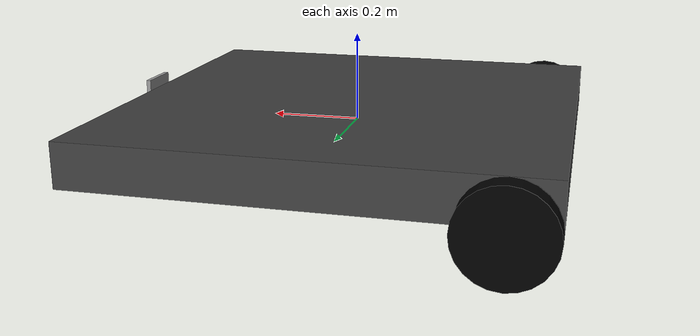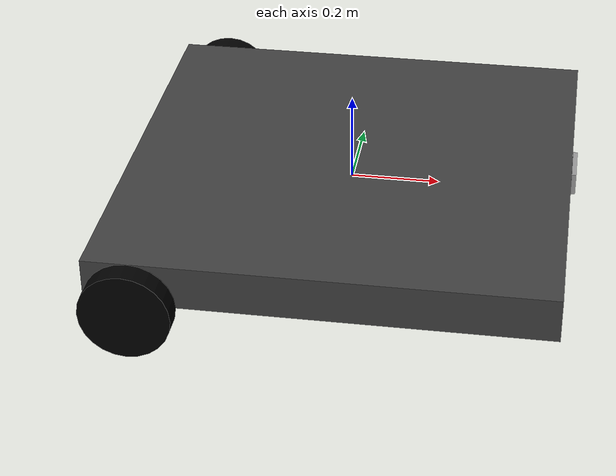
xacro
<?xml version="1.0"?>
<robot name="differential_drive_robot" xmlns:xacro="http://www.ros.org/wiki/xacro">

    <xacro:property name="PI" value="3.14159265"/>
    <xacro:property name="body_length" value="1.0"/>
    <xacro:property name="body_width" value="1.0"/>
    <xacro:property name="body_height" value="0.1"/>
    <xacro:property name="body_density" value="7850.0"/> <xacro:property name="body_mass" value="${body_density * body_length * body_height * body_width}"/>
    <xacro:property name="body_inertia_x" value="${1.0/12.0 * body_mass * (body_height*body_height + body_width*body_width)}"/>
    <xacro:property name="body_inertia_y" value="${1.0/12.0 * body_mass * (body_length*body_length + body_height*body_height)}"/>
    <xacro:property name="body_inertia_z" value="${1.0/12.0 * body_mass * (body_length*body_length + body_width*body_width)}"/>

    <xacro:property name="wheel_radius" value="0.1"/>
    <xacro:property name="wheel_width" value="0.05"/>
    <xacro:property name="wheel_separation" value="${body_width + wheel_width}"/>
    <xacro:property name="wheel_offset" value="${body_length/2 - wheel_radius}"/>
    <xacro:property name="wheel_density" value="900"/> <xacro:property name="wheel_mass" value="${wheel_density * PI * wheel_radius * wheel_radius * wheel_width}"/>
    <xacro:property name="wheel_inertia_x" value="${1.0/12.0 * wheel_mass * (3*wheel_radius*wheel_radius + wheel_width*wheel_width)}"/>
    <xacro:property name="wheel_inertia_y" value="${1.0/12.0 * wheel_mass * (3*wheel_radius*wheel_radius + wheel_width*wheel_width)}"/>
    <xacro:property name="wheel_inertia_z" value="${1.0/2.0 * wheel_mass * wheel_radius * wheel_radius}"/>

    <xacro:property name="caster_radius" value="0.1"/>
    <xacro:property name="caster_offset" value="${body_length/2 - caster_radius}"/>
    <xacro:property name="caster_density" value="0.1"/>
    <xacro:property name="caster_mass" value="${caster_density * 4.0/3.0 * PI * caster_radius * caster_radius * caster_radius}"/>
    <xacro:property name="caster_inertia_x" value="${2.0/5.0 * caster_mass * caster_radius * caster_radius}"/>
    <xacro:property name="caster_inertia_y" value="${2.0/5.0 * caster_mass * caster_radius * caster_radius}"/>
    <xacro:property name="caster_inertia_z" value="${2.0/5.0 * caster_mass * caster_radius * caster_radius}"/>

    <xacro:property name="max_linear_acceleration" value="10"/>

    <link name="body_link">
        <visual>
            <origin xyz="0.0 0.0 0.0" rpy="0.0 0.0 0.0"/>
            <geometry>
                <box size="${body_length} ${body_width} ${body_height}"/>
            </geometry>
            <material name="body_material">
                <color rgba="0.25 0.25 0.25 1.0"/>
            </material>
        </visual>
        <collision>
            <origin xyz="0.0 0.0 0.0" rpy="0.0 0.0 0.0"/>
            <geometry>
                <box size="${body_length} ${body_width} ${body_height}"/>
            </geometry>
        </collision>
        <inertial>
            <mass value="10"/>
            <inertia ixx="${body_inertia_x}" ixy="0.0" ixz="0.0" iyy="${body_inertia_y}" iyz="0" izz="${body_inertia_z}"/>
            <origin xyz="0 0 0" rpy="0 0 0"/>
        </inertial>
    </link>

    <link name="left_wheel_link">
        <visual>
            <origin xyz="0.0 0.0 0.0" rpy="1.570795 0.0 0.0"/>
            <geometry>
                <cylinder radius="${wheel_radius}" length="${wheel_width}"/>
            </geometry>
            <material name="wheel_material">
                <color rgba="0.0 0.0 0.0 1.0"/>
            </material>
        </visual>
        <collision>
            <origin xyz="0.0 0.0 0.0" rpy="1.570795 0.0 0.0"/>
            <geometry>
                <cylinder radius="${wheel_radius}" length="${wheel_width}"/>
            </geometry>
        </collision>
        <inertial>
            <mass value="2"/>
            <inertia ixx="${wheel_inertia_x}" ixy="0.0" ixz="0.0" iyy="${wheel_inertia_y}" iyz="0" izz="${wheel_inertia_z}"/>
            <origin xyz="0.0 0.0 0.0" rpy="1.570795 0.0 0.0"/>
        </inertial>
    </link>

    <link name="right_wheel_link">
        <visual>
            <origin xyz="0.0 0.0 0.0" rpy="1.570795 0.0 0.0"/>
            <geometry>
                <cylinder radius="${wheel_radius}" length="${wheel_width}"/>
            </geometry>
            <material name="wheel_material">
                <color rgba="0.0 0.0 0.0 1.0"/>
            </material>
        </visual>
        <collision>
            <origin xyz="0.0 0.0 0.0" rpy="1.570795 0.0 0.0"/>
            <geometry>
                <cylinder radius="${wheel_radius}" length="${wheel_width}"/>
            </geometry>
        </collision>
        <inertial>
            <mass value="2"/>
            <inertia ixx="${wheel_inertia_x}" ixy="0.0" ixz="0.0" iyy="${wheel_inertia_y}" iyz="0" izz="${wheel_inertia_z}"/>
            <origin xyz="0.0 0.0 0.0" rpy="1.570795 0.0 0.0"/>
        </inertial>
    </link>

    <link name="caster_link">
        <visual>
            <origin xyz="0.0 0.0 0.0" rpy="0.0 0.0 0.0"/>
            <geometry>
                <sphere radius="${caster_radius}"/>
            </geometry>
            <material name="caster_material">
                <color rgba="0.0 0.0 0.0 1.0"/>
            </material>
        </visual>
        <collision>
            <origin xyz="0.0 0.0 0.0" rpy="0.0 0.0 0.0"/>
            <geometry>
                <sphere radius="${caster_radius}"/>
            </geometry>
        </collision>
        <inertial>
            <mass value="0.5"/>
            <inertia ixx="${caster_inertia_x}" ixy="0.0" ixz="0.0" iyy="${caster_inertia_y}" iyz="0" izz="${caster_inertia_z}"/>
            <origin xyz="0 0 0" rpy="0 0 0"/>
        </inertial>
    </link>

    <joint name="left_wheel_joint" type="continuous">
        <origin xyz="-${wheel_offset} ${wheel_separation/2} -${wheel_radius/2}" rpy="0 0 0"/>
        <parent link="body_link"/>
        <child link="left_wheel_link"/>
        <axis xyz="0 1 0"/>
        <limit effort="100" velocity="10.0"/>
        <dynamics damping="0.1" friction="0.1"/>
    </joint>

    <joint name="right_wheel_joint" type="continuous">
        <origin xyz="-${wheel_offset} ${-wheel_separation/2} -${wheel_radius/2}" rpy="0 0 0"/>
        <parent link="body_link"/>
        <child link="right_wheel_link"/>
        <axis xyz="0 1 0"/>
        <limit effort="100" velocity="10.0"/>
        <dynamics damping="0.1" friction="0.1"/>
    </joint>

    <joint name="caster_joint" type="fixed">
        <origin xyz="${caster_offset} 0 -${caster_radius/2}" rpy="0 0 0"/>
        <parent link="body_link"/>
        <child link="caster_link"/>
    </joint>

    <gazebo reference="body_link">
        <mu1>1.0</mu1>
        <mu2>1.0</mu2>
    </gazebo>

    <gazebo reference="right_wheel_link">
        <mu1>1.0</mu1>
        <mu2>1.0</mu2>
    </gazebo>

    <gazebo reference="left_wheel_link">
        <mu1>1.0</mu1>
        <mu2>1.0</mu2>
    </gazebo>

    <gazebo reference="caster_link">
        <mu1>0.000001</mu1>
        <mu2>0.000001</mu2>
    </gazebo>

    <gazebo>
        <plugin filename="gz-sim-diff-drive-system" name="gz::sim::systems::DiffDrive">
            <right_joint>right_wheel_joint</right_joint>
            <left_joint>left_wheel_joint</left_joint>
            <wheel_separation>${wheel_separation}</wheel_separation>
            <wheel_radius>${wheel_radius}</wheel_radius>
            <max_linear_acceleration>${max_linear_acceleration}</max_linear_acceleration>
            <odom_publish_frequency>100</odom_publish_frequency>
            <topic>cmd_vel</topic>
            <odom_topic>odom</odom_topic>
        </plugin>

        <plugin filename="gz-sim-joint-state-publisher-system" name="gz::sim::systems::JointStatePublisher">
            <topic>joint_states</topic>
            <joint_name>right_wheel_joint</joint_name>
            <joint_name>left_wheel_joint</joint_name>
        </plugin>
    </gazebo>

    <xacro:include filename="camera.xacro" />

</robot>

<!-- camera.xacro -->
<robot xmlns:xacro="http://www.ros.org/wiki/xacro">

  <xacro:property name="camera_length" value="0.01"/>
  <xacro:property name="camera_width" value="0.1"/>
  <xacro:property name="camera_height" value="0.05"/>

  <xacro:property name="camera_mass" value="0.1"/>
  <xacro:property name="Ixx" value="${1.0/12.0 * camera_mass * (camera_width*camera_width + camera_height*camera_height)}"/>
  <xacro:property name="Iyy" value="${1.0/12.0 * camera_mass * (camera_length*camera_length + camera_height*camera_height)}"/>
  <xacro:property name="Izz" value="${1.0/12.0 * camera_mass * (camera_length*camera_length + camera_width*camera_width)}"/>

  <link name="camera_link">
    <visual>
      <geometry>
        <box size="${camera_length} ${camera_width} ${camera_height}"/>
      </geometry>
      <material name="grey"/>
    </visual>

    <collision>
      <geometry>
        <box size="${camera_length} ${camera_width} ${camera_height}"/>
      </geometry>
    </collision>

    <inertial>
      <origin xyz="0 0 0" rpy="0 0 0"/>
      <mass value="${camera_mass}"/>
      <inertia ixx="${Ixx}" ixy="0.0" ixz="0.0" iyy="${Iyy}" iyz="0.0" izz="${Izz}"/>
    </inertial>
  </link>

  <joint name="body_camera_joint" type="fixed">
    <parent link="body_link"/>
    <child link="camera_link"/>
    <origin xyz="${(body_length + camera_length)/2.0} 0 ${body_height/2.0}" rpy="0 0 0"/>
  </joint>

  <link name="camera_link_optical"/>

  <joint name="camera_optical_joint" type="fixed">
    <parent link="camera_link"/>
    <child link="camera_link_optical"/>
    <origin xyz="0 0 0" rpy="${-pi/2} 0 ${-pi/2}"/>
  </joint>

  <gazebo reference="camera_link">
    <material>Gazebo/Red</material>

    <sensor name="camera_sensor" type="camera">
      <topic>/camera/image_raw</topic>
      <always_on>true</always_on>
      <update_rate>10.0</update_rate>

      <gz_frame_id>camera_rgb_frame</gz_frame_id>

      <camera name="my_camera_sensor">
        <camera_info_topic>/camera/camera_info</camera_info_topic>
        <horizontal_fov>1.047</horizontal_fov>
        <image>
          <width>640</width>
          <height>480</height>
          <format>R8G8B8</format>
        </image>
        <clip>
          <near>0.1</near>
          <far>100</far>
        </clip>
      </camera>
    </sensor>
  </gazebo>

</robot>
